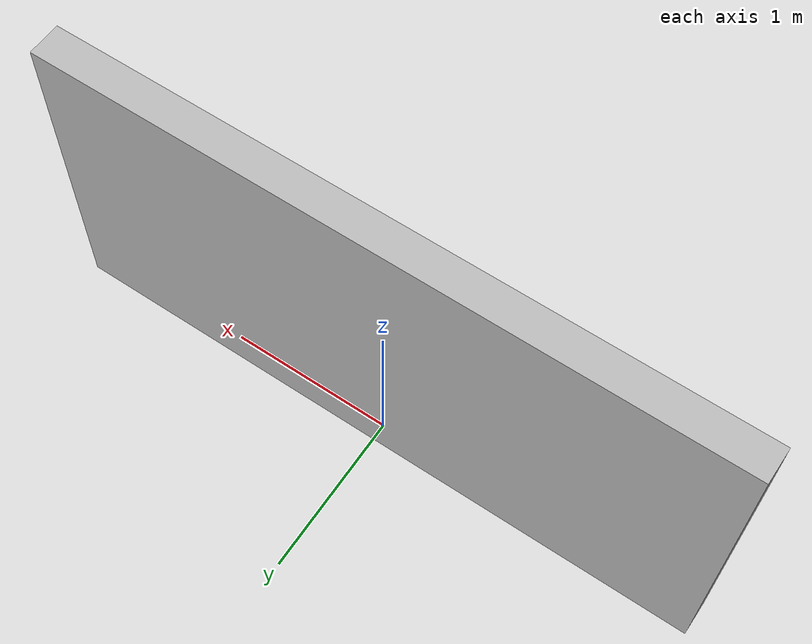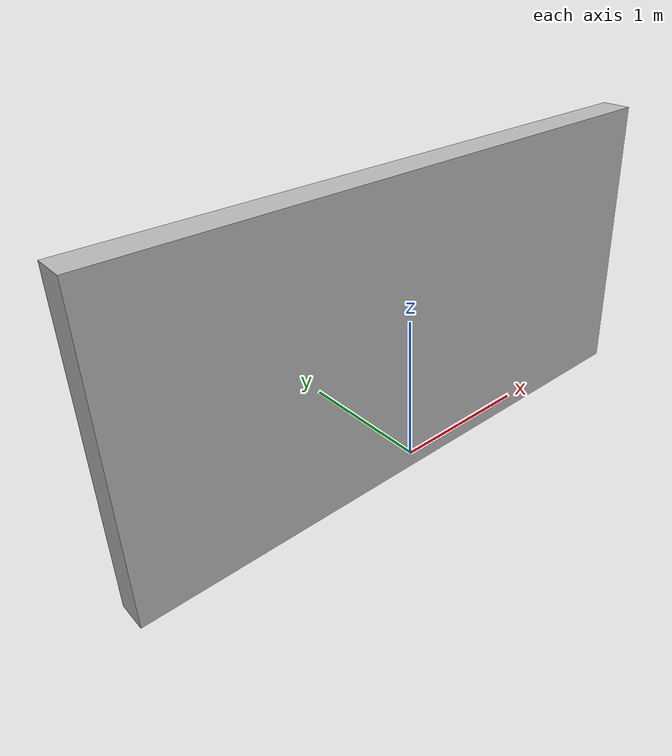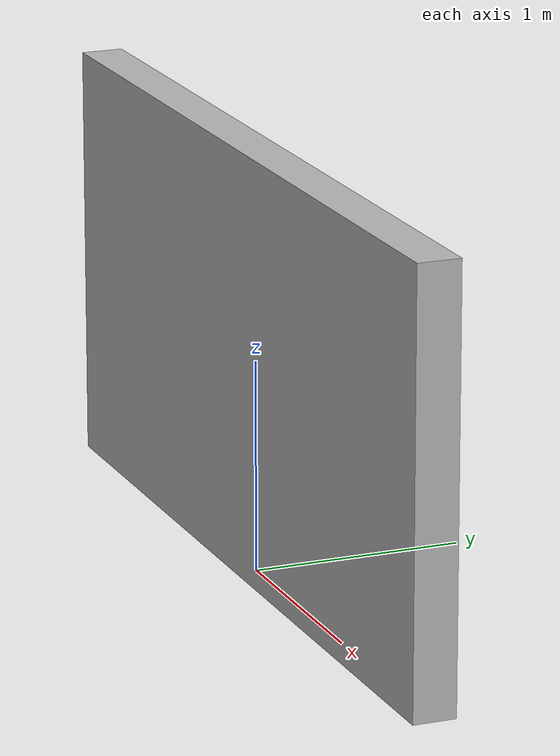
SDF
<?xml version="1.0"?>
<sdf version="1.10">
  <model name="wall_4m">
    <static>true</static>
    <link name="wall_link">
      <visual name="wall_visual">
        <geometry>
          <mesh>
            <uri>model://wall_4m/meshes/wall_4m.dae</uri>
          </mesh>
        </geometry>
      </visual>

      <collision name="wall_collision">
        <pose>0 0 1 0 0 0</pose>
        <geometry>
          <box>
            <size>4 0.2 2</size>
          </box>
        </geometry>
      </collision>
    </link>
  </model>
</sdf>
